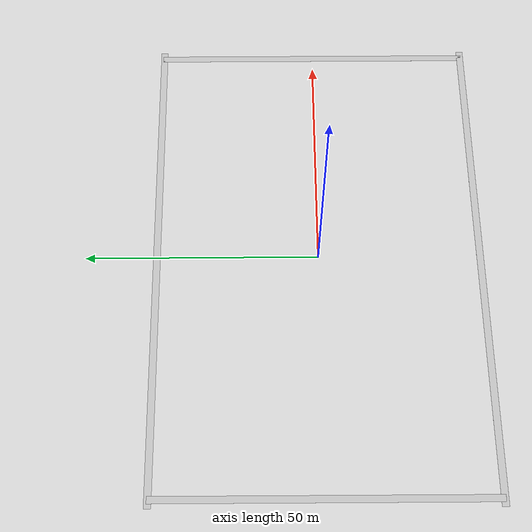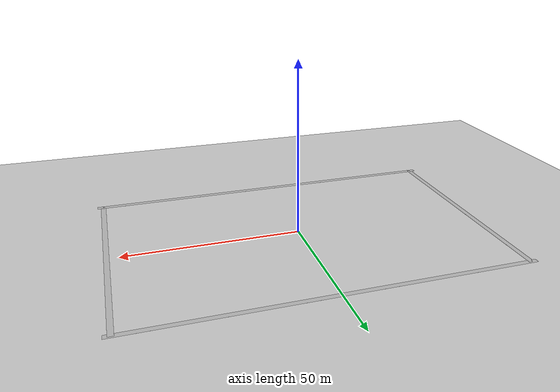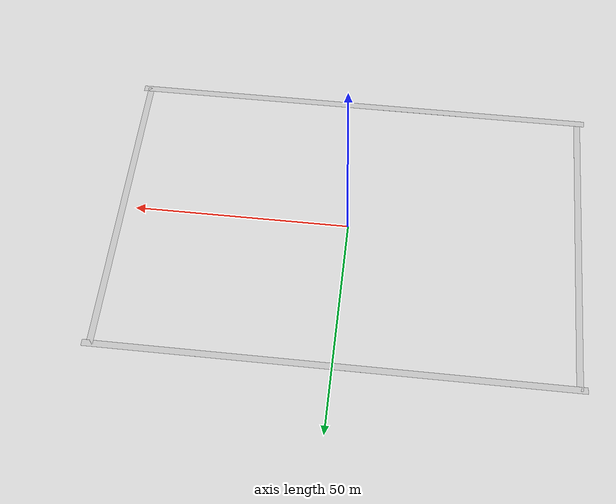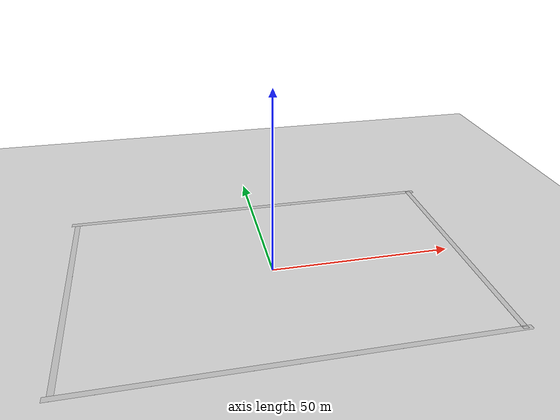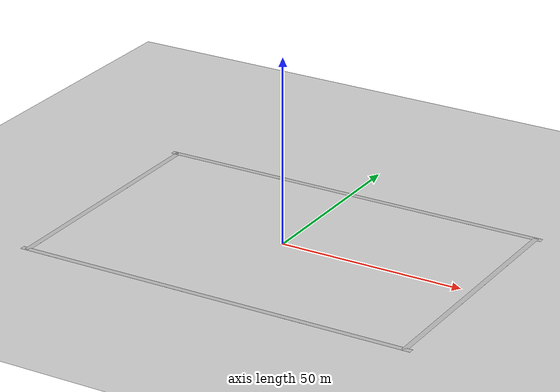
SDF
<?xml version="1.0" ?>
<sdf version="1.4">
  <model name="RoboCup15_MSL_Field">
    <static>true</static>

    <link name="field">
      <pose>0 0 0.01 0 0 0</pose>

      <!-- Main Field Collision -->
      <collision name="collision">
        <geometry>
          <plane>
            <normal>0 0 1</normal>
            <size>105 68</size>
          </plane>
        </geometry>
        <surface>
          <friction>
            <ode>
              <mu>100</mu>
              <mu2>50</mu2>
            </ode>
          </friction>
        </surface>
      </collision>

      <!-- Main Field Visual -->
      <visual name="carpet">
        <cast_shadows>false</cast_shadows>
        <geometry>
          <plane>
            <normal>0 0 1</normal>
            <size>105 68</size>
          </plane>
        </geometry>
        <material>
          <script>
            <uri>model://MSL_models15/RoboCup15_MSL_Field/materials/scripts/</uri>
            <uri>model://MSL_models15/RoboCup15_MSL_Field/materials/textures/</uri>
            <name>RoboCup/Carpet</name>
          </script>
        </material>
      </visual>

      <!-- Top Border -->
      <visual name="base1">
        <pose>0 34.75 0.01 0 0 0</pose>
        <cast_shadows>false</cast_shadows>
        <geometry>
          <plane>
            <normal>0 0 1</normal>
            <size>110 1.5</size>
          </plane>
        </geometry>
        <material>
          <script>
            <uri>model://MSL_models15/RoboCup15_MSL_Field/materials/scripts/</uri>
            <uri>model://MSL_models15/RoboCup15_MSL_Field/materials/textures/</uri>
            <name>RoboCup/FieldBorder</name>
          </script>
        </material>
      </visual>

      <!-- Bottom Border -->
      <visual name="base2">
        <pose>0 -34.75 0.01 0 0 0</pose>
        <cast_shadows>false</cast_shadows>
        <geometry>
          <plane>
            <normal>0 0 1</normal>
            <size>110 1.5</size>
          </plane>
        </geometry>
        <material>
          <script>
            <uri>model://MSL_models15/RoboCup15_MSL_Field/materials/scripts/</uri>
            <uri>model://MSL_models15/RoboCup15_MSL_Field/materials/textures/</uri>
            <name>RoboCup/FieldBorder</name>
          </script>
        </material>
      </visual>

      <!-- Right Border -->
      <visual name="base3">
        <pose>53.25 0 0.01 0 0 0</pose>
        <cast_shadows>false</cast_shadows>
        <geometry>
          <plane>
            <normal>0 0 1</normal>
            <size>1.5 70</size>
          </plane>
        </geometry>
        <material>
          <script>
            <uri>model://MSL_models15/RoboCup15_MSL_Field/materials/scripts/</uri>
            <uri>model://MSL_models15/RoboCup15_MSL_Field/materials/textures/</uri>
            <name>RoboCup/FieldBorder</name>
          </script>
        </material>
      </visual>

      <!-- Left Border -->
      <visual name="base4">
        <pose>-53.25 0 0.01 0 0 0</pose>
        <cast_shadows>false</cast_shadows>
        <geometry>
          <plane>
            <normal>0 0 1</normal>
            <size>1.5 70</size>
          </plane>
        </geometry>
        <material>
          <script>
            <uri>model://MSL_models15/RoboCup15_MSL_Field/materials/scripts/</uri>
            <uri>model://MSL_models15/RoboCup15_MSL_Field/materials/textures/</uri>
            <name>RoboCup/FieldBorder</name>
          </script>
        </material>
      </visual>

    </link>
  </model>
</sdf>
